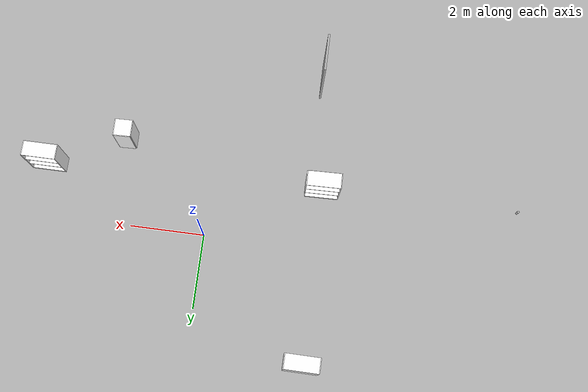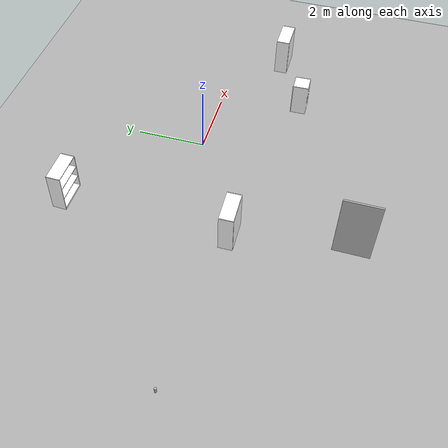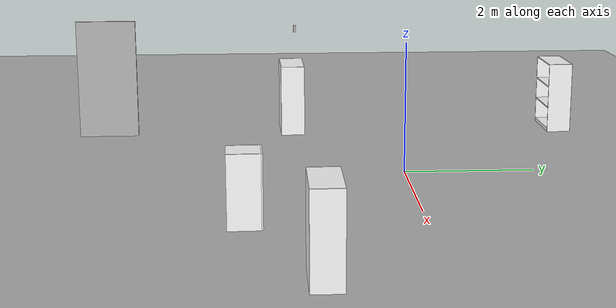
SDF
<sdf version="1.6">
 <world name="default">
  <model name="ground_plane">
   <static>1</static>
   <link name="link">
    <collision name="collision">
     <geometry><plane><normal>0 0 1</normal><size>100 100</size></plane></geometry>
     <surface><friction><ode><mu>100</mu><mu2>50</mu2></ode></friction></surface>
    </collision>
    <visual name="visual">
     <cast_shadows>0</cast_shadows>
     <geometry><plane><normal>0 0 1</normal><size>100 100</size></plane></geometry>
     <material>
      <ambient>0.3 0.3 0.3 1</ambient>
      <diffuse>0.7 0.7 0.7 1</diffuse>
      <specular>0.01 0.01 0.01 1</specular>
     </material>
    </visual>
    <velocity_decay><linear>0</linear><angular>0</angular></velocity_decay>
   </link>
  </model>
  <model name="cabinet">
   <static>0</static>
   <link name="cabinet_bottom_plate">
    <inertial>
     <pose>0 0 -1 0 -0 0</pose>
     <inertia><ixx>2.05</ixx><ixy>0</ixy><ixz>0</ixz><iyy>2.05</iyy><iyz>0</iyz><izz>2.05</izz></inertia>
     <mass>25</mass>
    </inertial>
    <collision name="cabinet_bottom_plate_geom">
     <pose>0 0 0.01 0 -0 0</pose>
     <geometry><box><size>0.45 0.45 0.02</size></box></geometry>
    </collision>
    <visual name="cabinet_bottom_plate_geom_visual">
     <pose>0 0 0.01 0 -0 0</pose>
     <geometry><box><size>0.45 0.45 0.02</size></box></geometry>
     <material><ambient>1 1 1 1</ambient><diffuse>1 1 1 1</diffuse><specular>0.2 0.2 0.2 1</specular></material>
    </visual>
    <collision name="cabinet_bottom_plate_geom_cabinet_back_plate">
     <pose>0.235 0 0.51 0 -0 0</pose>
     <geometry><box><size>0.02 0.45 1.02</size></box></geometry>
    </collision>
    <visual name="cabinet_bottom_plate_geom_cabinet_back_plate_visual">
     <pose>0.235 0 0.51 0 -0 0</pose>
     <geometry><box><size>0.02 0.45 1.02</size></box></geometry>
     <material><ambient>1 1 1 1</ambient><diffuse>1 1 1 1</diffuse><specular>0.2 0.2 0.2 1</specular></material>
    </visual>
    <collision name="cabinet_bottom_plate_geom_cabinet_left_plate">
     <pose>0 0.235 0.51 0 -0 0</pose>
     <geometry><box><size>0.45 0.02 1.02</size></box></geometry>
    </collision>
    <visual name="cabinet_bottom_plate_geom_cabinet_left_plate_visual">
     <pose>0 0.235 0.51 0 -0 0</pose>
     <geometry><box><size>0.45 0.02 1.02</size></box></geometry>
     <material><ambient>1 1 1 1</ambient><diffuse>1 1 1 1</diffuse><specular>0.2 0.2 0.2 1</specular></material>
    </visual>
    <collision name="cabinet_bottom_plate_geom_cabinet_middle_plate">
     <pose>0 0 0.51 0 -0 0</pose>
     <geometry><box><size>0.45 0.45 0.02</size></box></geometry>
    </collision>
    <visual name="cabinet_bottom_plate_geom_cabinet_middle_plate_visual">
     <pose>0 0 0.51 0 -0 0</pose>
     <geometry><box><size>0.45 0.45 0.02</size></box></geometry>
     <material><ambient>1 1 1 1</ambient><diffuse>1 1 1 1</diffuse><specular>0.2 0.2 0.2 1</specular></material>
    </visual>
    <collision name="cabinet_bottom_plate_geom_cabinet_right_plate">
     <pose>0 -0.235 0.51 0 -0 0</pose>
     <geometry><box><size>0.45 0.02 1.02</size></box></geometry>
    </collision>
    <visual name="cabinet_bottom_plate_geom_cabinet_right_plate_visual">
     <pose>0 -0.235 0.51 0 -0 0</pose>
     <geometry><box><size>0.45 0.02 1.02</size></box></geometry>
     <material><ambient>1 1 1 1</ambient><diffuse>1 1 1 1</diffuse><specular>0.2 0.2 0.2 1</specular></material>
    </visual>
    <collision name="cabinet_bottom_plate_geom_cabinet_top_plate">
     <pose>0 0 1.01 0 -0 0</pose>
     <geometry><box><size>0.45 0.45 0.02</size></box></geometry>
    </collision>
    <visual name="cabinet_bottom_plate_geom_cabinet_top_plate_visual">
     <pose>0 0 1.01 0 -0 0</pose>
     <geometry><box><size>0.45 0.45 0.02</size></box></geometry>
     <material><ambient>1 1 1 1</ambient><diffuse>1 1 1 1</diffuse><specular>0.2 0.2 0.2 1</specular></material>
    </visual>
    <velocity_decay><linear>0</linear><angular>0</angular></velocity_decay>
   </link>
   <pose>2.45497 -2.41796 0 -1e-06 0 1.59663</pose>
  </model>
  <model name="bookshelf_0">
   <static>0</static>
   <link name="link">
    <inertial>
     <mass>1</mass>
     <inertia><ixx>1</ixx><ixy>0</ixy><ixz>0</ixz><iyy>1</iyy><iyz>0</iyz><izz>1</izz></inertia>
    </inertial>
    <collision name="back">
     <pose>0 0.005 0.6 0 -0 0</pose>
     <geometry><box><size>0.9 0.01 1.2</size></box></geometry>
    </collision>
    <visual name="visual1">
     <pose>0 0.005 0.6 0 -0 0</pose>
     <geometry><box><size>0.9 0.01 1.2</size></box></geometry>
     <material><ambient>1 1 1 1</ambient><diffuse>1 1 1 1</diffuse><specular>0.2 0.2 0.2 1</specular></material>
    </visual>
    <collision name="left_side">
     <pose>0.45 -0.195 0.6 0 -0 0</pose>
     <geometry><box><size>0.02 0.4 1.2</size></box></geometry>
    </collision>
    <visual name="visual2">
     <pose>0.45 -0.195 0.6 0 -0 0</pose>
     <geometry><box><size>0.02 0.4 1.2</size></box></geometry>
     <material><ambient>1 1 1 1</ambient><diffuse>1 1 1 1</diffuse><specular>0.2 0.2 0.2 1</specular></material>
    </visual>
    <collision name="right_side">
     <pose>-0.45 -0.195 0.6 0 -0 0</pose>
     <geometry><box><size>0.02 0.4 1.2</size></box></geometry>
    </collision>
    <visual name="visual3">
     <pose>-0.45 -0.195 0.6 0 -0 0</pose>
     <geometry><box><size>0.02 0.4 1.2</size></box></geometry>
     <material><ambient>1 1 1 1</ambient><diffuse>1 1 1 1</diffuse><specular>0.2 0.2 0.2 1</specular></material>
    </visual>
    <collision name="bottom">
     <pose>0 -0.195 0.03 0 -0 0</pose>
     <geometry><box><size>0.88 0.4 0.06</size></box></geometry>
    </collision>
    <visual name="visual4">
     <pose>0 -0.195 0.03 0 -0 0</pose>
     <geometry><box><size>0.88 0.4 0.06</size></box></geometry>
     <material><ambient>1 1 1 1</ambient><diffuse>1 1 1 1</diffuse><specular>0.2 0.2 0.2 1</specular></material>
    </visual>
    <collision name="top">
     <pose>0 -0.195 1.19 0 -0 0</pose>
     <geometry><box><size>0.88 0.4 0.02</size></box></geometry>
    </collision>
    <visual name="visual5">
     <pose>0 -0.195 1.19 0 -0 0</pose>
     <geometry><box><size>0.88 0.4 0.02</size></box></geometry>
     <material><ambient>1 1 1 1</ambient><diffuse>1 1 1 1</diffuse><specular>0.2 0.2 0.2 1</specular></material>
    </visual>
    <collision name="low_shelf">
     <pose>0 -0.195 0.43 0 -0 0</pose>
     <geometry><box><size>0.88 0.4 0.02</size></box></geometry>
    </collision>
    <visual name="visual6">
     <pose>0 -0.195 0.43 0 -0 0</pose>
     <geometry><box><size>0.88 0.4 0.02</size></box></geometry>
     <material><ambient>1 1 1 1</ambient><diffuse>1 1 1 1</diffuse><specular>0.2 0.2 0.2 1</specular></material>
    </visual>
    <collision name="high_shelf">
     <pose>0 -0.195 0.8 0 -0 0</pose>
     <geometry><box><size>0.88 0.4 0.02</size></box></geometry>
    </collision>
    <visual name="visual7">
     <pose>0 -0.195 0.8 0 -0 0</pose>
     <geometry><box><size>0.88 0.4 0.02</size></box></geometry>
     <material><ambient>1 1 1 1</ambient><diffuse>1 1 1 1</diffuse><specular>0.2 0.2 0.2 1</specular></material>
    </visual>
    <velocity_decay><linear>0</linear><angular>0</angular></velocity_decay>
   </link>
   <pose>-3.00014 -1.82706 0 -2.2e-05 0 -3.1216</pose>
  </model>
  <model name="bookshelf_1">
   <static>0</static>
   <link name="link">
    <inertial>
     <mass>1</mass>
     <inertia><ixx>1</ixx><ixy>0</ixy><ixz>0</ixz><iyy>1</iyy><iyz>0</iyz><izz>1</izz></inertia>
    </inertial>
    <collision name="back">
     <pose>0 0.005 0.6 0 -0 0</pose>
     <geometry><box><size>0.9 0.01 1.2</size></box></geometry>
    </collision>
    <visual name="visual1">
     <pose>0 0.005 0.6 0 -0 0</pose>
     <geometry><box><size>0.9 0.01 1.2</size></box></geometry>
     <material><ambient>1 1 1 1</ambient><diffuse>1 1 1 1</diffuse><specular>0.2 0.2 0.2 1</specular></material>
    </visual>
    <collision name="left_side">
     <pose>0.45 -0.195 0.6 0 -0 0</pose>
     <geometry><box><size>0.02 0.4 1.2</size></box></geometry>
    </collision>
    <visual name="visual2">
     <pose>0.45 -0.195 0.6 0 -0 0</pose>
     <geometry><box><size>0.02 0.4 1.2</size></box></geometry>
     <material><ambient>1 1 1 1</ambient><diffuse>1 1 1 1</diffuse><specular>0.2 0.2 0.2 1</specular></material>
    </visual>
    <collision name="right_side">
     <pose>-0.45 -0.195 0.6 0 -0 0</pose>
     <geometry><box><size>0.02 0.4 1.2</size></box></geometry>
    </collision>
    <visual name="visual3">
     <pose>-0.45 -0.195 0.6 0 -0 0</pose>
     <geometry><box><size>0.02 0.4 1.2</size></box></geometry>
     <material><ambient>1 1 1 1</ambient><diffuse>1 1 1 1</diffuse><specular>0.2 0.2 0.2 1</specular></material>
    </visual>
    <collision name="bottom">
     <pose>0 -0.195 0.03 0 -0 0</pose>
     <geometry><box><size>0.88 0.4 0.06</size></box></geometry>
    </collision>
    <visual name="visual4">
     <pose>0 -0.195 0.03 0 -0 0</pose>
     <geometry><box><size>0.88 0.4 0.06</size></box></geometry>
     <material><ambient>1 1 1 1</ambient><diffuse>1 1 1 1</diffuse><specular>0.2 0.2 0.2 1</specular></material>
    </visual>
    <collision name="top">
     <pose>0 -0.195 1.19 0 -0 0</pose>
     <geometry><box><size>0.88 0.4 0.02</size></box></geometry>
    </collision>
    <visual name="visual5">
     <pose>0 -0.195 1.19 0 -0 0</pose>
     <geometry><box><size>0.88 0.4 0.02</size></box></geometry>
     <material><ambient>1 1 1 1</ambient><diffuse>1 1 1 1</diffuse><specular>0.2 0.2 0.2 1</specular></material>
    </visual>
    <collision name="low_shelf">
     <pose>0 -0.195 0.43 0 -0 0</pose>
     <geometry><box><size>0.88 0.4 0.02</size></box></geometry>
    </collision>
    <visual name="visual6">
     <pose>0 -0.195 0.43 0 -0 0</pose>
     <geometry><box><size>0.88 0.4 0.02</size></box></geometry>
     <material><ambient>1 1 1 1</ambient><diffuse>1 1 1 1</diffuse><specular>0.2 0.2 0.2 1</specular></material>
    </visual>
    <collision name="high_shelf">
     <pose>0 -0.195 0.8 0 -0 0</pose>
     <geometry><box><size>0.88 0.4 0.02</size></box></geometry>
    </collision>
    <visual name="visual7">
     <pose>0 -0.195 0.8 0 -0 0</pose>
     <geometry><box><size>0.88 0.4 0.02</size></box></geometry>
     <material><ambient>1 1 1 1</ambient><diffuse>1 1 1 1</diffuse><specular>0.2 0.2 0.2 1</specular></material>
    </visual>
    <velocity_decay><linear>0</linear><angular>0</angular></velocity_decay>
   </link>
   <pose>-2.97644 3.26394 1e-06 -6.7e-05 -0 -0.010391</pose>
  </model>
  <model name="bookshelf_4">
   <static>0</static>
   <link name="link">
    <inertial>
     <mass>1</mass>
     <inertia><ixx>1</ixx><ixy>0</ixy><ixz>0</ixz><iyy>1</iyy><iyz>0</iyz><izz>1</izz></inertia>
    </inertial>
    <collision name="back">
     <pose>0 0.005 0.6 0 -0 0</pose>
     <geometry><box><size>0.9 0.01 1.2</size></box></geometry>
    </collision>
    <visual name="visual1">
     <pose>0 0.005 0.6 0 -0 0</pose>
     <geometry><box><size>0.9 0.01 1.2</size></box></geometry>
     <material><ambient>1 1 1 1</ambient><diffuse>1 1 1 1</diffuse><specular>0.2 0.2 0.2 1</specular></material>
    </visual>
    <collision name="left_side">
     <pose>0.45 -0.195 0.6 0 -0 0</pose>
     <geometry><box><size>0.02 0.4 1.2</size></box></geometry>
    </collision>
    <visual name="visual2">
     <pose>0.45 -0.195 0.6 0 -0 0</pose>
     <geometry><box><size>0.02 0.4 1.2</size></box></geometry>
     <material><ambient>1 1 1 1</ambient><diffuse>1 1 1 1</diffuse><specular>0.2 0.2 0.2 1</specular></material>
    </visual>
    <collision name="right_side">
     <pose>-0.45 -0.195 0.6 0 -0 0</pose>
     <geometry><box><size>0.02 0.4 1.2</size></box></geometry>
    </collision>
    <visual name="visual3">
     <pose>-0.45 -0.195 0.6 0 -0 0</pose>
     <geometry><box><size>0.02 0.4 1.2</size></box></geometry>
     <material><ambient>1 1 1 1</ambient><diffuse>1 1 1 1</diffuse><specular>0.2 0.2 0.2 1</specular></material>
    </visual>
    <collision name="bottom">
     <pose>0 -0.195 0.03 0 -0 0</pose>
     <geometry><box><size>0.88 0.4 0.06</size></box></geometry>
    </collision>
    <visual name="visual4">
     <pose>0 -0.195 0.03 0 -0 0</pose>
     <geometry><box><size>0.88 0.4 0.06</size></box></geometry>
     <material><ambient>1 1 1 1</ambient><diffuse>1 1 1 1</diffuse><specular>0.2 0.2 0.2 1</specular></material>
    </visual>
    <collision name="top">
     <pose>0 -0.195 1.19 0 -0 0</pose>
     <geometry><box><size>0.88 0.4 0.02</size></box></geometry>
    </collision>
    <visual name="visual5">
     <pose>0 -0.195 1.19 0 -0 0</pose>
     <geometry><box><size>0.88 0.4 0.02</size></box></geometry>
     <material><ambient>1 1 1 1</ambient><diffuse>1 1 1 1</diffuse><specular>0.2 0.2 0.2 1</specular></material>
    </visual>
    <collision name="low_shelf">
     <pose>0 -0.195 0.43 0 -0 0</pose>
     <geometry><box><size>0.88 0.4 0.02</size></box></geometry>
    </collision>
    <visual name="visual6">
     <pose>0 -0.195 0.43 0 -0 0</pose>
     <geometry><box><size>0.88 0.4 0.02</size></box></geometry>
     <material><ambient>1 1 1 1</ambient><diffuse>1 1 1 1</diffuse><specular>0.2 0.2 0.2 1</specular></material>
    </visual>
    <collision name="high_shelf">
     <pose>0 -0.195 0.8 0 -0 0</pose>
     <geometry><box><size>0.88 0.4 0.02</size></box></geometry>
    </collision>
    <visual name="visual7">
     <pose>0 -0.195 0.8 0 -0 0</pose>
     <geometry><box><size>0.88 0.4 0.02</size></box></geometry>
     <material><ambient>1 1 1 1</ambient><diffuse>1 1 1 1</diffuse><specular>0.2 0.2 0.2 1</specular></material>
    </visual>
    <velocity_decay><linear>0</linear><angular>0</angular></velocity_decay>
   </link>
   <pose>4.47222 -1.66795 1e-06 -7e-05 0 3.13785</pose>
  </model>
  <model name="table_1">
   <link name="wallWithREEMphoto_body">
    <inertial>
     <mass>4</mass>
     <inertia><ixx>1</ixx><ixy>0</ixy><ixz>0</ixz><iyy>1</iyy><iyz>0</iyz><izz>1</izz></inertia>
    </inertial>
    <collision name="collision"><geometry><box><size>0.05 1 2</size></box></geometry></collision>
    <visual name="visual">
     <geometry><box><size>0.05 1 2</size></box></geometry>
     <material>
      <script>
       <uri>model://wall_with_reem_photo/material/scripts</uri>
       <uri>model://wall_with_reem_photo/material/textures</uri>
       <name>Custom/REEM_photo0</name>
      </script>
     </material>
    </visual>
   </link>
   <pose>-2.6622 -4.80329 0.999999 2e-06 1.1e-05 2e-05</pose>
  </model>
  <model name="coke_can_slim">
   <static>0</static>
   <link name="link">
    <inertial>
     <mass>0.15</mass>
     <inertia><ixx>2079.98</ixx><ixy>0</ixy><ixz>0</ixz><iyy>2079.98</iyy><iyz>0</iyz><izz>419.21</izz></inertia>
    </inertial>
    <collision name="collision">
     <geometry><cylinder><radius>0.029</radius><length>0.15</length></cylinder></geometry>
    </collision>
    <visual name="visual">
     <geometry><cylinder><radius>0.029</radius><length>0.15</length></cylinder></geometry>
     <material>
      <script>
       <uri>model://coke_can_slim/material/scripts</uri>
       <uri>model://coke_can_slim/material/textures</uri>
       <name>Custom/coke_can_slim</name>
      </script>
     </material>
    </visual>
    <velocity_decay><linear>0</linear><angular>0</angular></velocity_decay>
   </link>
   <pose>-8.02336 -1.41422 1.09041 -7.3e-05 -4e-05 -0.792224</pose>
  </model>
 </world>
</sdf>
